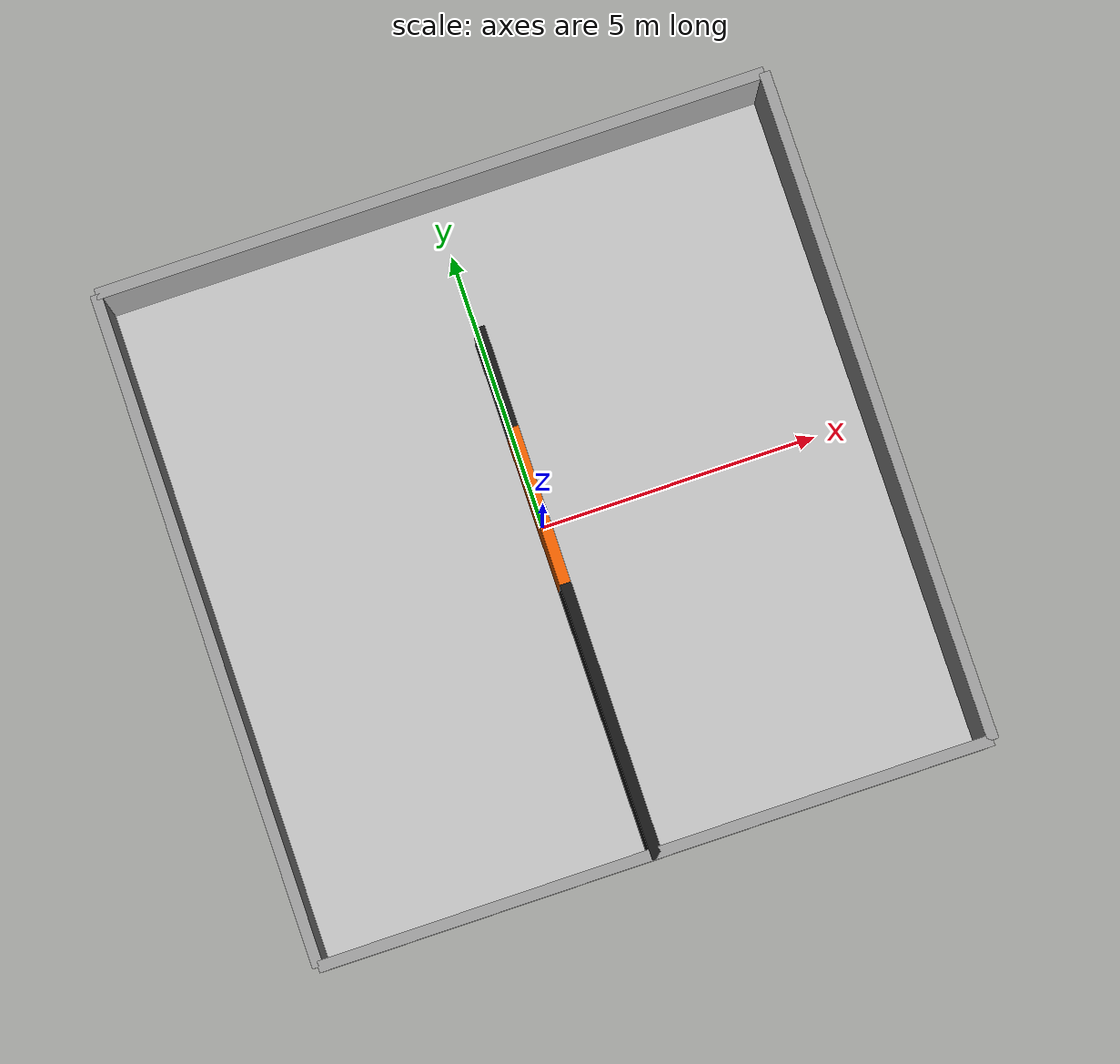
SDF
<?xml version="1.0"?>
<sdf version="1.9">
  <world name="divider_room">
    <plugin filename="gz-sim-physics-system" name="gz::sim::systems::Physics"/>
    <plugin filename="gz-sim-user-commands-system" name="gz::sim::systems::UserCommands"/>
    <plugin filename="gz-sim-scene-broadcaster-system" name="gz::sim::systems::SceneBroadcaster"/>
    <plugin filename="gz-sim-sensors-system" name="gz::sim::systems::Sensors">
      <render_engine>ogre2</render_engine>
    </plugin>

    <gravity>0 0 -9.81</gravity>
    <physics name="physics" type="ignored">
      <max_step_size>0.001</max_step_size>
      <real_time_factor>1.0</real_time_factor>
    </physics>
    <scene>
      <ambient>0.45 0.45 0.45 1</ambient>
      <background>0.85 0.90 0.95 1</background>
      <shadows>true</shadows>
    </scene>
    <light name="sun" type="directional">
      <cast_shadows>true</cast_shadows>
      <pose>0 0 20 0 0 0</pose>
      <diffuse>1 1 1 1</diffuse>
      <specular>0.2 0.2 0.2 1</specular>
      <direction>-0.5 0.3 -1</direction>
    </light>

    <model name="floor">
      <static>true</static>
      <pose>0 0 -0.025 0 0 0</pose>
      <link name="link">
        <collision name="collision">
          <geometry><box><size>12 12 0.05</size></box></geometry>
        </collision>
        <visual name="visual">
          <geometry><box><size>12 12 0.05</size></box></geometry>
          <material><ambient>0.8 0.8 0.8 1</ambient><diffuse>0.8 0.8 0.8 1</diffuse></material>
        </visual>
      </link>
    </model>

    <!-- Four outer walls -->
    <model name="wall_left"><static>true</static><pose>-6 0 1.25 0 0 0</pose>
      <link name="link"><collision name="collision"><geometry><box><size>0.2 12 2.5</size></box></geometry></collision><visual name="visual"><geometry><box><size>0.2 12 2.5</size></box></geometry><material><ambient>0.65 0.65 0.65 1</ambient><diffuse>0.65 0.65 0.65 1</diffuse></material></visual></link>
    </model>
    <model name="wall_right"><static>true</static><pose>6 0 1.25 0 0 0</pose>
      <link name="link"><collision name="collision"><geometry><box><size>0.2 12 2.5</size></box></geometry></collision><visual name="visual"><geometry><box><size>0.2 12 2.5</size></box></geometry><material><ambient>0.65 0.65 0.65 1</ambient><diffuse>0.65 0.65 0.65 1</diffuse></material></visual></link>
    </model>
    <model name="wall_bottom"><static>true</static><pose>0 -6 1.25 0 0 0</pose>
      <link name="link"><collision name="collision"><geometry><box><size>12 0.2 2.5</size></box></geometry></collision><visual name="visual"><geometry><box><size>12 0.2 2.5</size></box></geometry><material><ambient>0.65 0.65 0.65 1</ambient><diffuse>0.65 0.65 0.65 1</diffuse></material></visual></link>
    </model>
    <model name="wall_top"><static>true</static><pose>0 6 1.25 0 0 0</pose>
      <link name="link"><collision name="collision"><geometry><box><size>12 0.2 2.5</size></box></geometry></collision><visual name="visual"><geometry><box><size>12 0.2 2.5</size></box></geometry><material><ambient>0.65 0.65 0.65 1</ambient><diffuse>0.65 0.65 0.65 1</diffuse></material></visual></link>
    </model>

    <!-- Center divider segments. The orange segment is removed by the launch file. -->
    <model name="divider_lower"><static>true</static><pose>0 -3.65 1.25 0 0 0</pose>
      <link name="link"><collision name="collision"><geometry><box><size>0.2 4.9 2.5</size></box></geometry></collision><visual name="visual"><geometry><box><size>0.2 4.9 2.5</size></box></geometry><material><ambient>0.1 0.1 0.1 1</ambient><diffuse>0.1 0.1 0.1 1</diffuse></material></visual></link>
    </model>
    <model name="disappearing_wall"><static>true</static><pose>0 0.2 1.25 0 0 0</pose>
      <link name="link"><collision name="collision"><geometry><box><size>0.2 2.8 2.5</size></box></geometry></collision><visual name="visual"><geometry><box><size>0.2 2.8 2.5</size></box></geometry><material><ambient>1 0.4 0 1</ambient><diffuse>1 0.4 0 1</diffuse></material></visual></link>
    </model>
    <model name="divider_upper"><static>true</static><pose>0 2.5 1.25 0 0 0</pose>
      <link name="link"><collision name="collision"><geometry><box><size>0.2 1.8 2.5</size></box></geometry></collision><visual name="visual"><geometry><box><size>0.2 1.8 2.5</size></box></geometry><material><ambient>0.1 0.1 0.1 1</ambient><diffuse>0.1 0.1 0.1 1</diffuse></material></visual></link>
    </model>

  </world>
</sdf>
